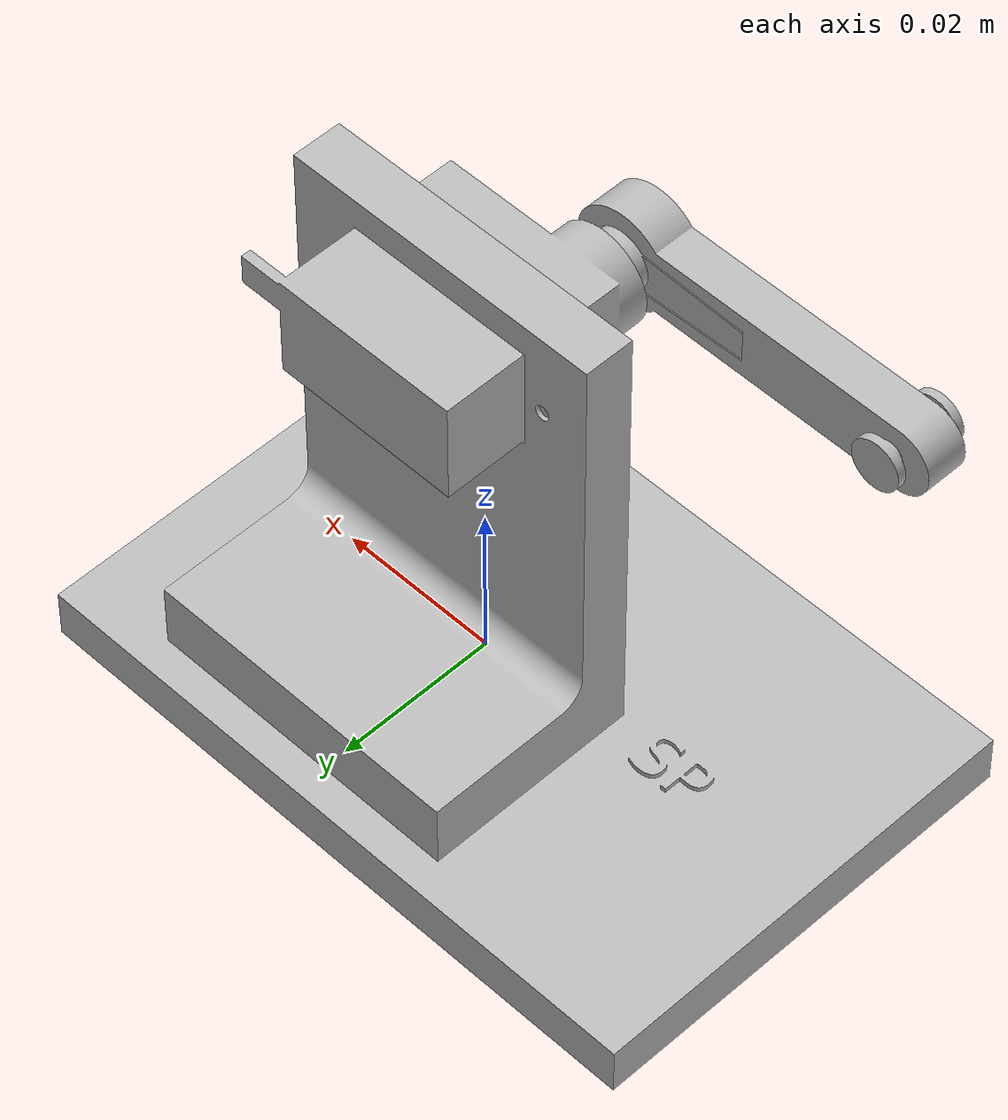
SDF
<sdf version="1.7">
  <model name="servo_mount_v1">
    <link name="base_link">
      <inertial>
        <pose>-0.002946 0.005692 0.020996 0 0 0</pose>
        <mass>0.045848</mass>
        <inertia>
          <ixx>2.603e-05</ixx>
          <ixy>-4.112e-07</ixy>
          <ixz>-2.301e-06</ixz>
          <iyy>3.290e-05</iyy>
          <iyz>1.472e-06</iyz>
          <izz>1.900e-05</izz>
        </inertia>
      </inertial>
      <visual name="base_v">
        <pose>-0.000000 -0.000000 -0.000000 0 0 0</pose>
        <geometry>
          <mesh>
            <uri>stl/base.stl</uri>
            <scale>0.001 0.001 0.001</scale>
          </mesh>
        </geometry>
      </visual>
      <visual name="cradle_v">
        <pose>-0.000000 -0.000000 -0.000000 0 0 0</pose>
        <geometry>
          <mesh>
            <uri>stl/cradle.stl</uri>
            <scale>0.001 0.001 0.001</scale>
          </mesh>
        </geometry>
      </visual>
      <visual name="servo_v">
        <pose>-0.000000 -0.000000 -0.000000 0 0 0</pose>
        <geometry>
          <mesh>
            <uri>stl/servo.stl</uri>
            <scale>0.001 0.001 0.001</scale>
          </mesh>
        </geometry>
      </visual>
      <visual name="tab0_v">
        <pose>-0.000000 -0.000000 -0.000000 0 0 0</pose>
        <geometry>
          <mesh>
            <uri>stl/tab0.stl</uri>
            <scale>0.001 0.001 0.001</scale>
          </mesh>
        </geometry>
      </visual>
      <visual name="tab1_v">
        <pose>-0.000000 -0.000000 -0.000000 0 0 0</pose>
        <geometry>
          <mesh>
            <uri>stl/tab1.stl</uri>
            <scale>0.001 0.001 0.001</scale>
          </mesh>
        </geometry>
      </visual>
      <visual name="m3a_v">
        <pose>-0.000000 -0.000000 -0.000000 0 0 0</pose>
        <geometry>
          <mesh>
            <uri>stl/m3a.stl</uri>
            <scale>0.001 0.001 0.001</scale>
          </mesh>
        </geometry>
      </visual>
      <visual name="m3b_v">
        <pose>-0.000000 -0.000000 -0.000000 0 0 0</pose>
        <geometry>
          <mesh>
            <uri>stl/m3b.stl</uri>
            <scale>0.001 0.001 0.001</scale>
          </mesh>
        </geometry>
      </visual>
      <visual name="ins_a_v">
        <pose>-0.000000 -0.000000 -0.000000 0 0 0</pose>
        <geometry>
          <mesh>
            <uri>stl/ins_a.stl</uri>
            <scale>0.001 0.001 0.001</scale>
          </mesh>
        </geometry>
      </visual>
      <visual name="ins_b_v">
        <pose>-0.000000 -0.000000 -0.000000 0 0 0</pose>
        <geometry>
          <mesh>
            <uri>stl/ins_b.stl</uri>
            <scale>0.001 0.001 0.001</scale>
          </mesh>
        </geometry>
      </visual>
      <collision name="base_c">
        <pose>-0.000000 -0.000000 -0.000000 0 0 0</pose>
        <geometry>
          <mesh>
            <uri>stl/base.stl</uri>
            <scale>0.001 0.001 0.001</scale>
          </mesh>
        </geometry>
      </collision>
      <collision name="cradle_c">
        <pose>-0.000000 -0.000000 -0.000000 0 0 0</pose>
        <geometry>
          <mesh>
            <uri>stl/cradle.stl</uri>
            <scale>0.001 0.001 0.001</scale>
          </mesh>
        </geometry>
      </collision>
      <collision name="servo_c">
        <pose>-0.000000 -0.000000 -0.000000 0 0 0</pose>
        <geometry>
          <mesh>
            <uri>stl/servo.stl</uri>
            <scale>0.001 0.001 0.001</scale>
          </mesh>
        </geometry>
      </collision>
      <collision name="tab0_c">
        <pose>-0.000000 -0.000000 -0.000000 0 0 0</pose>
        <geometry>
          <mesh>
            <uri>stl/tab0.stl</uri>
            <scale>0.001 0.001 0.001</scale>
          </mesh>
        </geometry>
      </collision>
      <collision name="tab1_c">
        <pose>-0.000000 -0.000000 -0.000000 0 0 0</pose>
        <geometry>
          <mesh>
            <uri>stl/tab1.stl</uri>
            <scale>0.001 0.001 0.001</scale>
          </mesh>
        </geometry>
      </collision>
      <collision name="m3a_c">
        <pose>-0.000000 -0.000000 -0.000000 0 0 0</pose>
        <geometry>
          <mesh>
            <uri>stl/m3a.stl</uri>
            <scale>0.001 0.001 0.001</scale>
          </mesh>
        </geometry>
      </collision>
      <collision name="m3b_c">
        <pose>-0.000000 -0.000000 -0.000000 0 0 0</pose>
        <geometry>
          <mesh>
            <uri>stl/m3b.stl</uri>
            <scale>0.001 0.001 0.001</scale>
          </mesh>
        </geometry>
      </collision>
      <collision name="ins_a_c">
        <pose>-0.000000 -0.000000 -0.000000 0 0 0</pose>
        <geometry>
          <mesh>
            <uri>stl/ins_a.stl</uri>
            <scale>0.001 0.001 0.001</scale>
          </mesh>
        </geometry>
      </collision>
      <collision name="ins_b_c">
        <pose>-0.000000 -0.000000 -0.000000 0 0 0</pose>
        <geometry>
          <mesh>
            <uri>stl/ins_b.stl</uri>
            <scale>0.001 0.001 0.001</scale>
          </mesh>
        </geometry>
      </collision>
    </link>
    <link name="arm_link">
      <pose>-0.005300 -0.014000 0.052000 0 0 0</pose>
      <inertial>
        <pose>-0.034710 -0.001899 0.000000 0 0 0</pose>
        <mass>0.202683</mass>
        <inertia>
          <ixx>2.401e-08</ixx>
          <ixy>-9.218e-09</ixy>
          <ixz>-4.101e-22</ixz>
          <iyy>1.744e-06</iyy>
          <iyz>-6.201e-22</iyz>
          <izz>1.738e-06</izz>
        </inertia>
      </inertial>
      <visual name="horn_v">
        <pose>0.005300 0.014000 -0.052000 0 0 0</pose>
        <geometry>
          <mesh>
            <uri>stl/horn.stl</uri>
            <scale>0.001 0.001 0.001</scale>
          </mesh>
        </geometry>
      </visual>
      <visual name="arm_v">
        <pose>0.005300 0.014000 -0.052000 0 0 0</pose>
        <geometry>
          <mesh>
            <uri>stl/arm.stl</uri>
            <scale>0.001 0.001 0.001</scale>
          </mesh>
        </geometry>
      </visual>
      <visual name="horn_screw_v">
        <pose>0.005300 0.014000 -0.052000 0 0 0</pose>
        <geometry>
          <mesh>
            <uri>stl/horn_screw.stl</uri>
            <scale>0.001 0.001 0.001</scale>
          </mesh>
        </geometry>
      </visual>
      <visual name="weight_v">
        <pose>0.005300 0.014000 -0.052000 0 0 0</pose>
        <geometry>
          <mesh>
            <uri>stl/weight.stl</uri>
            <scale>0.001 0.001 0.001</scale>
          </mesh>
        </geometry>
      </visual>
      <collision name="horn_c">
        <pose>0.005300 0.014000 -0.052000 0 0 0</pose>
        <geometry>
          <mesh>
            <uri>stl/horn.stl</uri>
            <scale>0.001 0.001 0.001</scale>
          </mesh>
        </geometry>
      </collision>
      <collision name="arm_c">
        <pose>0.005300 0.014000 -0.052000 0 0 0</pose>
        <geometry>
          <mesh>
            <uri>stl/arm.stl</uri>
            <scale>0.001 0.001 0.001</scale>
          </mesh>
        </geometry>
      </collision>
      <collision name="horn_screw_c">
        <pose>0.005300 0.014000 -0.052000 0 0 0</pose>
        <geometry>
          <mesh>
            <uri>stl/horn_screw.stl</uri>
            <scale>0.001 0.001 0.001</scale>
          </mesh>
        </geometry>
      </collision>
      <collision name="weight_c">
        <pose>0.005300 0.014000 -0.052000 0 0 0</pose>
        <geometry>
          <mesh>
            <uri>stl/weight.stl</uri>
            <scale>0.001 0.001 0.001</scale>
          </mesh>
        </geometry>
      </collision>
    </link>
    <link name="load_point">
      <pose>-0.040300 -0.015900 0.052000 0 0 0</pose>
      <inertial>
        <pose>0 0 0 0 0 0</pose>
        <mass>0.000001</mass>
        <inertia>
          <ixx>1e-12</ixx>
          <ixy>0</ixy>
          <ixz>0</ixz>
          <iyy>1e-12</iyy>
          <iyz>0</iyz>
          <izz>1e-12</izz>
        </inertia>
      </inertial>
    </link>
    <joint name="shaft" type="revolute">
      <parent>base_link</parent>
      <child>arm_link</child>
      <axis>
        <xyz>0.0 1.0 0</xyz>
        <limit>
          <lower>-1.57080</lower>
          <upper>1.57080</upper>
          <effort>0.17652</effort>
          <velocity>10.47198</velocity>
        </limit>
      </axis>
    </joint>
    <joint name="load_point_fixed" type="fixed">
      <parent>arm_link</parent>
      <child>load_point</child>
    </joint>
  </model>
</sdf>
